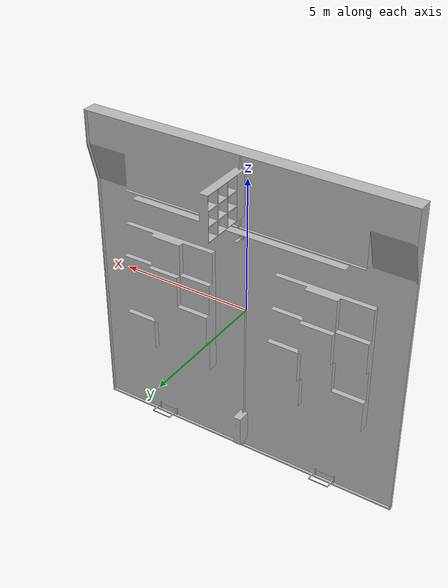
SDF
<sdf version="1.4">
	<world name="default">
		<scene>
	      <shadows>false</shadows>
	      <grid>false</grid>
          <origin_visual>false</origin_visual>

	      <sky>
		  	<time>0</time>
	      </sky>
	    </scene>

		<model name='sat_camera'>
		<pose>0 0 3.048 0 0 0</pose>
			<static>1</static>
			<link name='camera_link'>
				<pose>0 0 0 0 1.57 1.57</pose> <!-- camera placed at a heigth of 16 feet-->
				<inertial>
					<mass>0.1</mass>
					<inertia>
						<ixx>1</ixx>
						<ixy>0</ixy>
						<ixz>0</ixz>
						<iyy>1</iyy>
						<iyz>0</iyz>
						<izz>1</izz>
					</inertia>
				</inertial>
				<collision name='collision'>
					<geometry>
						<box>
							<size>0.001 0.001 0.001</size>
						</box>
					</geometry>
					<max_contacts>10</max_contacts>
					<surface>
						<bounce/>
						<friction>
							<ode/>
						</friction>
						<contact>
							<ode/>
						</contact>
					</surface>
				</collision>
				<visual name='visual'>
				<pose>0 0 0.3 0. -1.57 -1.57</pose>
					<geometry>
						<mesh>
						<uri>model://sat_cam/sat_cam.obj</uri>
						</mesh>
					</geometry>
				</visual>
				<sensor type='camera' name='camera'>
					<camera name='overhead_cam'>
						<horizontal_fov>0.8</horizontal_fov>
						<image>
							<width>950</width>
							<height>950</height>
						</image>
						<clip>
							<near>0.1</near>
							<far>5</far>
						</clip>
					</camera>

					<plugin name='camera_control' filename='libgazebo_ros_camera.so'>
						<alwaysOn>true</alwaysOn>
						<updateRate>0</updateRate>
						<cameraName>gazebo/overhead_cam</cameraName>
						<imageTopicName>image_rect_color</imageTopicName>
						<cameraInfoTopicName>camera_info</cameraInfoTopicName>
						<frameName>overhead_cam_frame</frameName>
					</plugin>
					<always_on>1</always_on>
					<update_rate>60</update_rate>
					<visualize>0</visualize>

				</sensor>

				<gravity>1</gravity>
			</link>
		</model>

		<include>
			<uri>model://arena</uri>
			<pose>0 0 0.001 0 0 0</pose>
		</include>

		<!-- Only one ROS interface plugin is required per world, as any other plugin can connect a Gazebo
		topic to a ROS topic (or vise versa). -->
		<plugin name="ros_interface_plugin" filename="librotors_gazebo_ros_interface_plugin.so"/>

		<spherical_coordinates>
			<surface_model>EARTH_WGS84</surface_model>
			<latitude_deg>47.3667</latitude_deg>
			<longitude_deg>8.5500</longitude_deg>
			<elevation>0.0</elevation>
			<heading_deg>0</heading_deg>
		</spherical_coordinates>
		<physics type='ode'>
			<ode>
				<solver>
					<type>quick</type>
					<iters>1000</iters>
					<sor>1.3</sor>
				</solver>
				<constraints>
					<cfm>0</cfm>
					<erp>0.2</erp>
					<contact_max_correcting_vel>100</contact_max_correcting_vel>
					<contact_surface_layer>0.001</contact_surface_layer>
				</constraints>
			</ode>
			<max_step_size>0.001</max_step_size>
			<real_time_factor>1</real_time_factor>
			<real_time_update_rate>1000</real_time_update_rate>
			<gravity>0 0 -9.8</gravity>
		</physics>
	</world>
</sdf>

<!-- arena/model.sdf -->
<sdf version="1.4">
    <model name="arena">
      <pose>0 0 0 0 0 0</pose>
      <static>true</static>
      <link name="link">
        <visual name="visual">
          <geometry>
            <mesh>
              <uri>model://arena/arena.obj</uri>
              <scale>1 1 1</scale>
            </mesh>
          </geometry>
        </visual>

        <collision name="collision">
          <geometry>
            <plane>
              <normal>0 0 1</normal>
              <size>2.43 2.43</size>
            </plane>
          </geometry>
          <surface>
            <friction>
              <ode>
                <mu>100</mu>
                <mu2>50</mu2>
              </ode>
            </friction>
          </surface>
        </collision>
      </link>
    </model>
</sdf>
